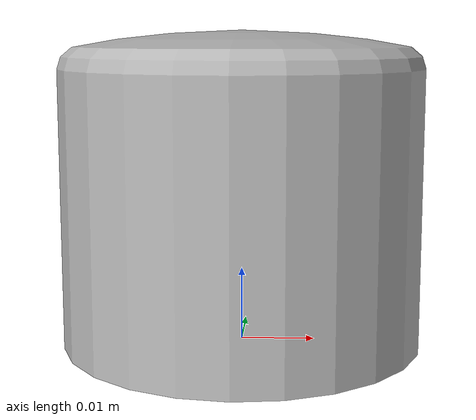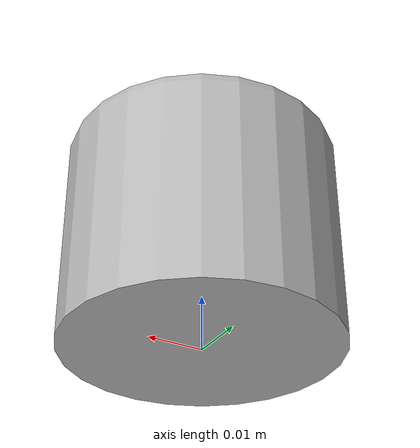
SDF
<?xml version="1.0"?>
<sdf version="1.7">
  <model name="mid360">
    <link name="mid360/livox_link">

      <!-- 라이다 본체 위치 (drone 또는 차량 기준 상대 좌표계) -->
      <pose>0 0 0 0 0 0</pose>

      <!-- 관성 정보 -->
      <inertial>
        <!-- 무게중심 오프셋: 대략 중심 -->
        <pose>0 0 0.03 0 0 0</pose>
        <!-- 무게: 265g = 0.265kg -->
        <mass>0.265</mass>
        <inertia>
          <!-- 실측값 없으므로 원통 대략 계산값 사용 -->
          <ixx>0.0005</ixx>
          <ixy>0</ixy>
          <ixz>0</ixz>
          <iyy>0.0005</iyy>
          <iyz>0</iyz>
          <izz>0.0006</izz>
        </inertia>
      </inertial>

      <!-- 충돌 형상: 원통 형태 -->
      <collision name="collision">
        <!-- Z 높이 오프셋: 중심 위치로 설정 -->
        <pose>0 0 0.03 0 0 0</pose>
        <geometry>
          <cylinder>
            <!-- 직경 65mm → 반지름 0.0325 -->
            <radius>0.0325</radius>
            <!-- 높이 60mm -->
            <length>0.06</length>
          </cylinder>
        </geometry>
      </collision>

      <!-- 시각적 메쉬 (dae 파일 사용) -->
      <visual name="visual">
        <geometry>
          <mesh>
            <uri>model://lidar_3d_v2/meshes/lidar_3d_v2.dae</uri>
            <!-- 스케일은 실제 모델 크기에 맞게 조정 -->
            <scale>0.3 0.3 0.3</scale>
          </mesh>
        </geometry>
      </visual>

      <!-- Livox MID-360 라이다 센서 설정 -->
      <sensor name="livox_lidar" type="gpu_lidar">
        <pose>0 0 0.03 0 0 0</pose>
        <!-- 프레임 속도: MID360 스펙 기준 10Hz -->
        <update_rate>10</update_rate>

        <lidar>
          <scan>
            <horizontal>
              <!-- 360도 수평 시야, 샘플 수는 성능 고려하여 설정 -->
              <samples>400</samples>
              <resolution>1</resolution>
              <min_angle>0</min_angle>
              <max_angle>6.28319</max_angle> <!-- 2π rad = 360도 -->
            </horizontal>
            <vertical>
              <!-- 수직 샘플 수: GPU 비용 고려 (16~64 사이 추천) -->
              <samples>16</samples>
              <resolution>1</resolution>
              <!-- 수직 FOV: -7° ~ 52° → rad 변환 -->
              <min_angle>-0.1222</min_angle>  <!-- -7 deg -->
              <max_angle>0.9076</max_angle>   <!-- 52 deg -->
            </vertical>
          </scan>
          <range>
            <!-- 최소 감지 거리: 0.1m -->
            <min>0.1</min>
            <!-- 최대 감지 거리: 70m (스펙 상 반사율 80% 기준) -->
            <max>70.0</max>
            <!-- 거리 해상도: 2mm 단위 해석 (스펙상 2~3cm 오차 고려) -->
            <resolution>0.002</resolution>
          </range>
          <noise>
            <!-- Gaussian 노이즈 추가: 1cm 표준편차 -->
            <type>gaussian</type>
            <mean>0.0</mean>
            <stddev>0.01</stddev>
          </noise>
        </lidar>

        <!-- Gazebo 내 시각화 여부 -->
        <visualize>true</visualize>
      </sensor>
    </link>
  </model>
</sdf>
